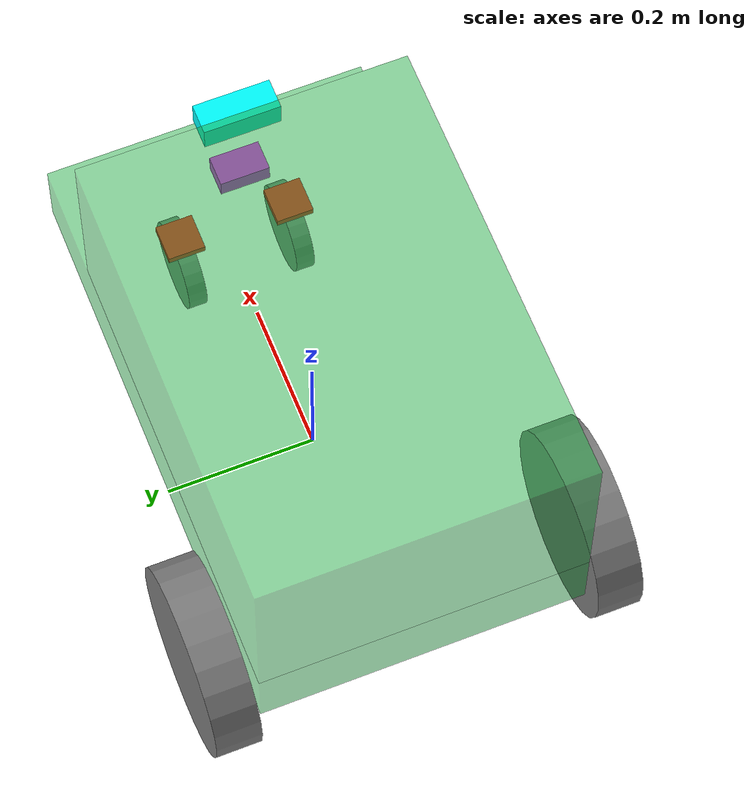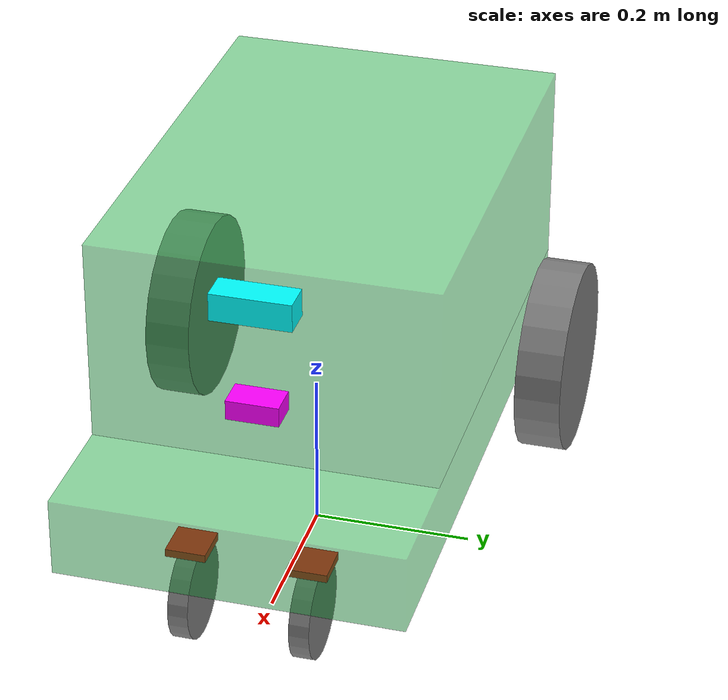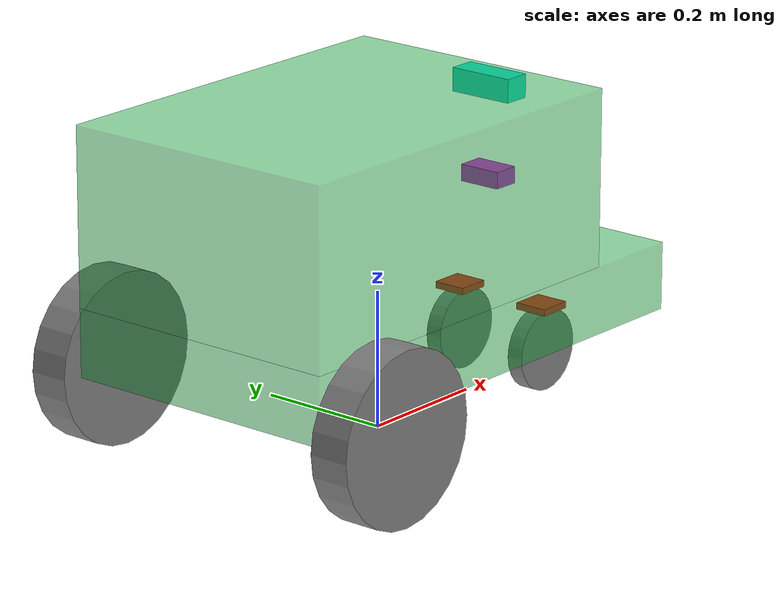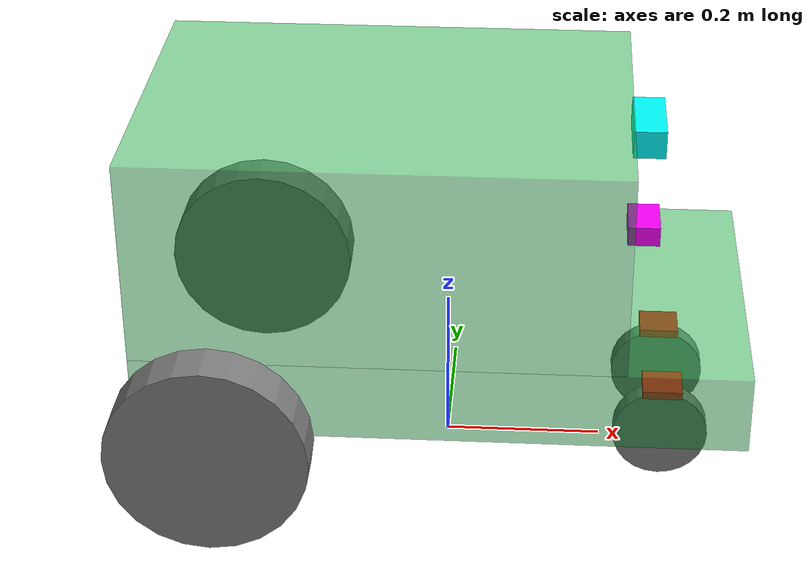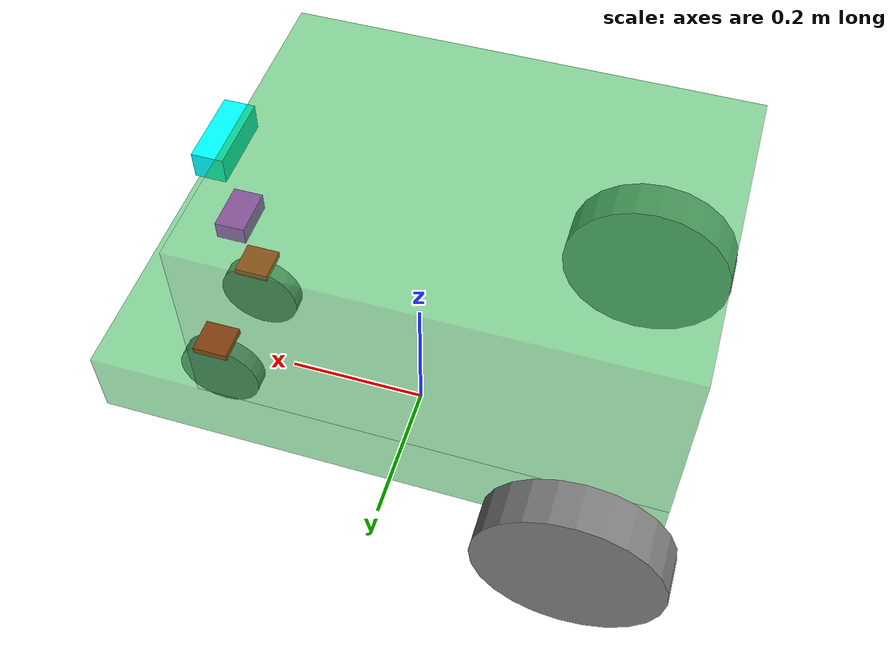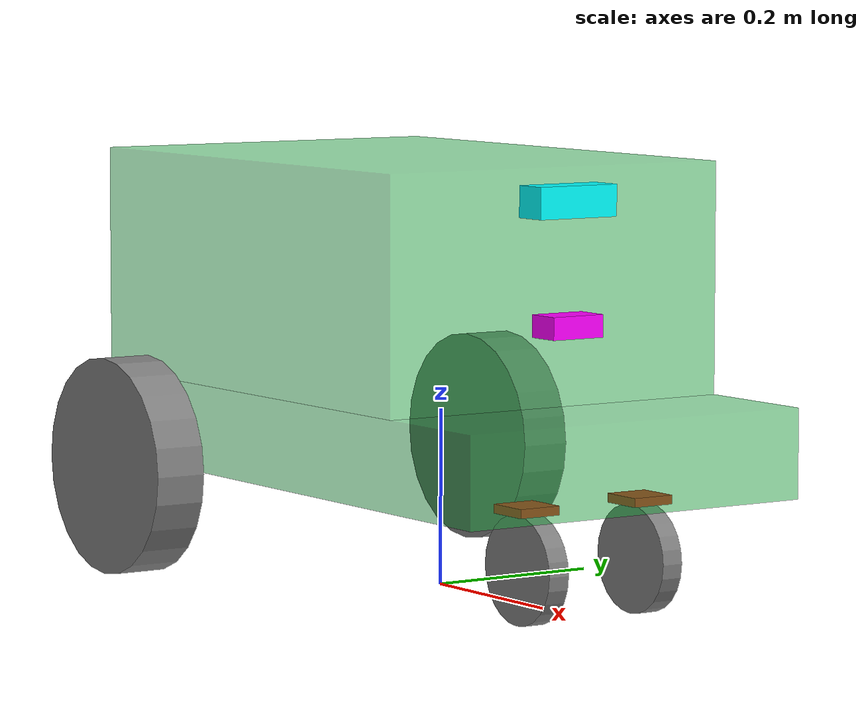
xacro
<?xml version="1.0"?>
<robot xmlns:xacro="http://ros.org/wiki/xacro">
    <!--Fail dlya opredeleniya inertsii, tam zhyoskie formuli-->
        <xacro:include filename="inertial_macros.xacro" />
    <!-- Massa chastei robota -->
        <!-- Telo -->
         <xacro:property name="mass_body" value="20"/>
        <!-- Zadnie kolyosa -->
        <xacro:property name="mass_back_wheel" value="2.5"/>
        <!-- Perednie kolyosa -->
        <xacro:property name="mass_front_wheel" value="1"/>
        <!-- Osi vrascheniya dlya perednih kolyos -->
        <xacro:property name="mass_front_joint" value="0.1"/>
    <!-- Opredelenie konstant robota -->
        <!-- Telo -->
        <xacro:property name="body_length" value="0.75"/>
        <xacro:property name="body_width" value="0.43"/>
        <xacro:property name="body_height" value="0.10"/>

        <xacro:property name="body_up_length" value="0.60"/>
        <xacro:property name="body_up_width" value="0.43"/>
        <xacro:property name="body_up_height" value="0.26"/>
        <!-- Kolyosa zadnie -->
        <xacro:property name="wheel_diameter" value="0.25"/>
        <xacro:property name="wheel_width" value="0.06"/>
        <xacro:property name="wheel_ygap" value="0.025"/>
        <xacro:property name="wheel_zoff" value="0.1"/>
        <xacro:property name="wheel_xoff" value="0.12"/>
        <!-- Kolyosa perednie -->
        <xacro:property name="wheel_diameter_front" value="0.12"/>
        <xacro:property name="wheel_width_front" value="0.025"/>
        <xacro:property name="wheel_ygap_front" value="0.025"/>
        <xacro:property name="wheel_xoff_front" value="0.12"/>
        <!-- Kamera -->
        <xacro:property name="camera_length" value="0.04"/>
        <xacro:property name="camera_width" value="0.065"/>
        <xacro:property name="camera_height" value="0.025"/>
        <!-- Parktronik -->
        <xacro:property name="park_length" value="0.04"/>
        <xacro:property name="park_width" value="0.1"/>
        <xacro:property name="park_height" value="0.035"/>

    <!-- TSveta dlya rviz -->
        <!-- Telo -->
        <material name="body">
            <color rgba="0.1 0.7 0.25 0.5"/>
        </material>
        <!-- Kolyosa -->
        <material name="wheel">
            <color rgba="0.5 0.5 0.5 1.0"/>
        </material>
        <!-- Osi vrascheniya -->
        <material name="rotation_axis">
            <color rgba="1.0 0 0 1.0"/>
        </material>
        <!-- Lidar -->
        <material name="lidar">
            <color rgba="1.0 1.0 0 1.0"/>
        </material>
        <!-- Kamera -->
        <material name="camera">
            <color rgba="1.0 0 1.0 1.0"/>
        </material>
        <!-- Parktronik -->
        <material name="parking_sensors">
            <color rgba="0 1.0 1.0 1.0"/>
        </material>
    <!-- TSveta i nastroiki dlya gazebo -->
        <!-- Telo -->
        <gazebo reference="body_link">
            <material>Gazebo/Green</material>
        </gazebo>

        <gazebo reference="body_up_link">
            <material>Gazebo/Green</material>
        </gazebo>
        <!-- Kolyosa -->
            <gazebo reference="left_wheel_front_link">
                <material>Gazebo/FlatBlack</material>
                <mu1 value="0.001"/>
                <mu2 value="0.001"/>
            </gazebo>

            <gazebo reference="right_wheel_front_link">
                <material>Gazebo/FlatBlack</material>
                <mu1 value="0.001"/>
                <mu2 value="0.001"/>
            </gazebo>

            <gazebo reference="left_wheel_link">
                <material>Gazebo/FlatBlack</material>
            </gazebo>

            <gazebo reference="right_wheel_link">
                <material>Gazebo/FlatBlack</material>
            </gazebo>

        <!-- Lidar -->

        <!-- Kamera -->
            <gazebo reference="camera_link">
                <material>Gazebo/Purple</material>
                <sensor name="camera" type="camera">
                    <pose> 0 0 0 0 0 0 </pose>
                    <visualize>true</visualize>
                    <update_rate>10</update_rate>
                    <camera>
                        <horizontal_fov>1.089</horizontal_fov>
                        <image>
                            <format>R8G8B8</format>
                            <width>640</width>
                            <height>480</height>
                        </image>
                        <clip>
                            <near>0.05</near>
                            <far>8.0</far>
                        </clip>
                    </camera>
                    <plugin name="camera_controller" filename="libgazebo_ros_camera.so">
                        <frame_name>camera_link</frame_name>
                    </plugin>
                </sensor>
            </gazebo>

        <!-- Parktronik -->
        <gazebo reference="park_link">
            <material>Gazebo/Blue</material>

        </gazebo>

    <!-- Bazovaya ssilka(hz kak imenno ona rabotaet, no ona tochno ne mozhet yavlyat'sya telom, kak minimum ya ne smog eyo zastavit' rabotat' tak) -->

        <link name="base_link">

        </link>

        <joint name="base_footprint_joint" type="fixed">
            <parent link="base_link"/>
            <child link="base_footprint"/>
            <origin xyz="0 0 0" rpy="0 0 0"/>
        </joint>

        <link name="base_footprint">

        </link>
    <!-- Osnovnoe telo robota -->
        <!-- Nizhnyaya chast'(rama s kolyosami) -->
        <joint name="body_joint" type="fixed">
            <parent link="base_link"/>
            <child link="body_link"/>
            <origin xyz="0 0 ${body_height/2 + wheel_diameter / 2}"/>
        </joint>

        <link name="body_link">
            <visual>_
                <origin xyz="0 0 0" rpy="0 0 0"/>
                <geometry>
                    <box size="${body_length} ${body_width} ${body_height}"/>
                </geometry>
                <material name="body"/>
            </visual>
            <collision>
                <origin xyz="0 0 0" rpy="0 0 0"/>
                <geometry>
                    <box size="${body_length} ${body_width} ${body_height}"/>
                </geometry>
            </collision>
            <xacro:inertial_box mass="${mass_body / 2}" x="${body_length}" y="${body_width}" z="${body_height}">
                <origin xyz="0 0 0" rpy="0 0 0"/>
            </xacro:inertial_box>
        </link>

    <!-- Verhnyaya chast'(rama s kolyosami) -->
        <joint name="body_up_joint" type="fixed">
            <parent link="body_link"/>
            <child link="body_up_link"/>
            <origin xyz="${-(body_length - body_up_length)/2} 0 ${body_height/2 + wheel_diameter/2+0.005}"/>
        </joint>

        <link name="body_up_link">
            <visual>
                <origin xyz="0 0 0" rpy="0 0 0"/>
                <geometry>
                    <box size="${body_up_length} ${body_up_width} ${body_up_height}"/>
                </geometry>
                <material name="body"/>
            </visual>
            <collision>
                <origin xyz="0 0 0" rpy="0 0 0"/>
                <geometry>
                    <box size="${body_up_length} ${body_up_width} ${body_up_height}"/>
                </geometry>
            </collision>
            <xacro:inertial_box mass="${mass_body / 2}" x="${body_up_length}" y="${body_up_width}" z="${body_up_height}">
                <origin xyz="0 0 0" rpy="0 0 0"/>
            </xacro:inertial_box>
        </link>
    <!-- Kolesa -->
        <!-- Makros dlya opredeleniya zadnego kolesa -->
            <xacro:macro name="wheel" params="prefix x_reflect y_reflect">
                <link name="${prefix}_link">
                    <visual>
                        <origin xyz="0 0 0" rpy="${pi/2} 0 0"/>
                        <geometry>
                            <cylinder radius="${wheel_diameter/2}" length="${wheel_width}"/>
                        </geometry>
                        <material name="wheel"/>
                    </visual>
                    <collision>
                        <origin xyz="0 0 0" rpy="${pi/2} 0 0"/>
                        <geometry>
                            <cylinder radius="${wheel_diameter/2}" length="${wheel_width}"/>
                        </geometry>
                    </collision>
                    <xacro:inertial_cylinder mass="${mass_back_wheel}" length="${wheel_width}" radius="${wheel_diameter/2}">
                <origin xyz="0 0 0" rpy="${pi/2} 0 0"/>
            </xacro:inertial_cylinder>
                </link>
                <joint name="${prefix}_joint" type="continuous">
                    <parent link="base_link"/>
                    <child link="${prefix}_link"/>
                    <origin xyz="${x_reflect*wheel_xoff} ${y_reflect*(body_width/2+wheel_ygap)} ${wheel_diameter/2}" rpy="0 0 0"/>
                    <axis xyz="0 1 0"/>
                </joint>
            </xacro:macro>
        <!-- Makros dlya opredeleniya perednego kolesa i osi vrascheniya -->
            <xacro:macro name="wheel_small" params="prefix x_reflect y_reflect">
                <link name="${prefix}_link">
                    <visual>
                        <origin xyz="0 0 0" rpy="${pi/2} 0 0"/>
                        <geometry>
                            <cylinder radius="${wheel_diameter_front/2}" length="${wheel_width_front}"/>
                        </geometry>
                        <material name="wheel"/>
                    </visual>
                    <collision>
                        <origin xyz="0 0 0" rpy="${pi/2} 0 0"/>
                        <geometry>
                            <cylinder radius="${wheel_diameter_front/2}" length="${wheel_width_front}"/>
                        </geometry>
                    </collision>
                    <xacro:inertial_cylinder mass="${mass_front_wheel}" length="${wheel_width_front}" radius="${wheel_diameter_front/2}">
                <origin xyz="0 0 0" rpy="${pi/2} 0 0"/>
            </xacro:inertial_cylinder>
                </link>
                <link name="${prefix}_link_to_wheel">
                    <visual>
                        <origin xyz="0 0 0" rpy="0 0 0"/>
                        <geometry>
                            <box size="0.05 0.05 0.01"/>
                        </geometry>
                        <material name="rotation_axis"/>
                    </visual>
                    <collision>
                        <origin xyz="0 0 0" rpy="0 0 0"/>
                        <geometry>
                            <box size="0.05 0.05 0.01"/>
                        </geometry>
                    </collision>
                    <xacro:inertial_box mass="${mass_front_joint}" x="0.05" y="0.05" z="0.01">
                <origin xyz="0 0 0" rpy="0 0 0"/>
            </xacro:inertial_box>
                </link>
                <joint name="${prefix}_joint_wheel" type="fixed">
                    <parent link="body_link"/>
                    <child link="${prefix}_link_to_wheel"/>
                    <origin xyz="${x_reflect*wheel_xoff_front} ${y_reflect} ${-(body_height/2)}" rpy="0 0 0"/>
                    <axis xyz="0 0 1"/>
                </joint>
                <joint name="${prefix}_joint" type="fixed">
                    <parent link="${prefix}_link_to_wheel"/>
                    <child link="${prefix}_link"/>
                    <origin xyz="0 0 ${-(0.01/2+wheel_diameter_front/2)}" rpy="0 0 0"/>
                    <axis xyz="0 1 0"/>
                </joint>
            </xacro:macro>

        <!-- Opredelenie zadnih kolyos -->

        <xacro:wheel_small prefix="left_wheel_front" x_reflect="2.3" y_reflect="0.075" />
        <xacro:wheel_small prefix="right_wheel_front" x_reflect="2.3" y_reflect="-0.075" />

        <!-- Opredelenie perednih kolyos -->

        <xacro:wheel prefix="left_wheel" x_reflect="-2.3" y_reflect="1.05" />
        <xacro:wheel prefix="right_wheel" x_reflect="-2.3" y_reflect="-1.05" />

    <!-- Lidar -->

    <!-- Kamera -->

        <link name="camera_link">
            <visual>
                <origin xyz="0 0 0" rpy="0 0 0"/>
                <geometry>
                    <box size="${camera_length} ${camera_width} ${camera_height}"/>
                </geometry>
                <material name="camera"/>
            </visual>
            <collision>
                <origin xyz="0 0 0" rpy="0 0 0"/>
                <geometry>
                    <box size="${camera_length} ${camera_width} ${camera_height}"/>
                </geometry>
            </collision>
        </link>

        <joint name="camera_joint" type="fixed">
            <parent link="body_up_link"/>
            <child link="camera_link"/>
            <origin xyz="${body_up_length/2 + camera_length/2} 0 ${body_up_height/2 - 0.17}" rpy="0 0 0"/>
        </joint>

    <!-- Parktronik -->

        <link name="park_link">
            <visual>
                <origin xyz="0 0 0" rpy="0 0 0"/>
                <geometry>
                    <box size="${park_length} ${park_width} ${park_height}"/>
                </geometry>
                <material name="parking_sensors"/>
            </visual>
            <collision>
                <origin xyz="0 0 0" rpy="0 0 0"/>
                <geometry>
                    <box size="${park_length} ${park_width} ${park_height}"/>
                </geometry>
            </collision>
        </link>

        <joint name="park_joint" type="fixed">
            <parent link="body_up_link"/>
            <child link="park_link"/>
            <origin xyz="${body_up_length/2 + park_length/2} 0 ${body_up_height/2 - park_height}" rpy="0 0 0"/>
        </joint>

</robot>
